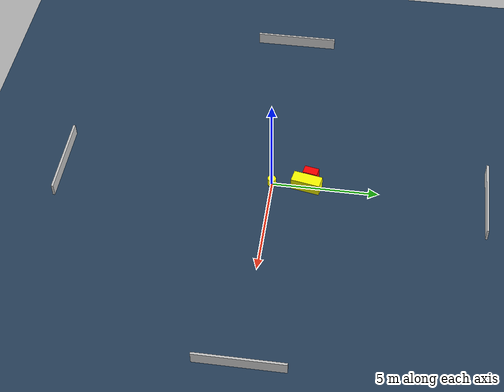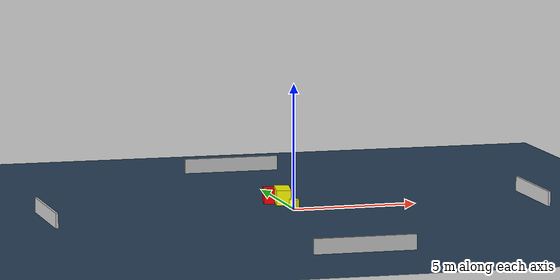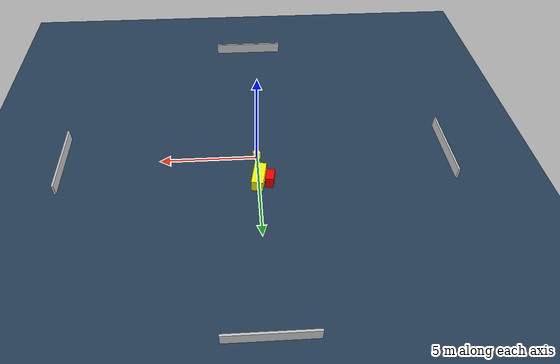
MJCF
<?xml version="1.0" ?>
<mujoco model="generated_environment">
  <option timestep="0.01" integrator="RK4" cone="elliptic"/>
  <default>
    <geom density="1"/>
  </default>
  <asset>
    <texture builtin="gradient" height="3072" name="skybox" rgb1="0.3 0.5 0.7" rgb2="0 0 0" type="skybox" width="512"/>
    <texture builtin="checker" height="300" name="groundplane" rgb1="0.2 0.3 0.4" rgb2="0.1 0.2 0.3" type="2d" width="300"/>
    <material name="groundplane" reflectance="0.2" texrepeat="5 5" texture="groundplane"/>
  </asset>
  <worldbody>
    <light dir="0 0 -1" directional="true" pos="0 0 1.5"/>
    <geom condim="3" friction="0.5 0.005 0.001" material="groundplane" name="floor" pos="0 0 0" size="0 0 0.05" type="plane"/>
    <body name="walls">
      <geom name="wall_1" condim="4" pos="-10.0 0.0 0.3" rgba="0.800000011920929 0.800000011920929 0.800000011920929 1.0" size="0.05 2.0 0.3" type="box"/>
      <geom name="wall_2" condim="4" pos="10.0 0.0 0.3" rgba="0.800000011920929 0.800000011920929 0.800000011920929 1.0" size="0.05 2.0 0.3" type="box"/>
      <geom name="wall_3" condim="4" pos="0.0 -10.0 0.3" rgba="0.800000011920929 0.800000011920929 0.800000011920929 1.0" size="2.0 0.05 0.3" type="box"/>
      <geom name="wall_4" condim="4" pos="0.0 10.0 0.3" rgba="0.800000011920929 0.800000011920929 0.800000011920929 1.0" size="2.0 0.05 0.3" type="box"/>
    </body>
    <body name="robot">
      <joint name="joint_x" type="slide" pos="0 0 0" axis="1 0 0"/>
      <joint name="joint_y" type="slide" pos="0 0 0" axis="0 1 0"/>
      <geom name="robot" type="cylinder" pos="0.0 0.0 0.2" size="0.2 0.2 0.0" mass="5.0" friction="1.0 0.005 0.0001" condim="4" rgba="1.0 1.0 0.0 1.0"/>
    </body>
    <body name="obstacle_1_movable">
      <geom name="obstacle_1_movable" condim="4" pos="-0.024345929987341947 1.6350520865913725 0.3" euler="0 0 169.20474635384102" friction="0.0 0.005 0.001" rgba="1.0 1.0 0.0 1.0" size="0.297839688995566 0.6854212211791191 0.3" type="box" mass="0.1"/>
      <joint type="free"/>
    </body>
    <body name="obstacle_2_static">
      <geom name="obstacle_2_static" condim="4" pos="-0.5647554000116284 1.7742335437500272 0.3" euler="0 0 169.24497407372073" friction="0.0 0.005 0.001" rgba="1.0 0.0 0.0 1.0" size="0.21009270425027735 0.3447811286041905 0.3" type="box"/>
    </body>
  </worldbody>
  <actuator>
    <motor name="actuator_x" joint="joint_x" gear="1" ctrlrange="-1 1"/>
    <motor name="actuator_y" joint="joint_y" gear="1" ctrlrange="-1 1"/>
  </actuator>
</mujoco>
